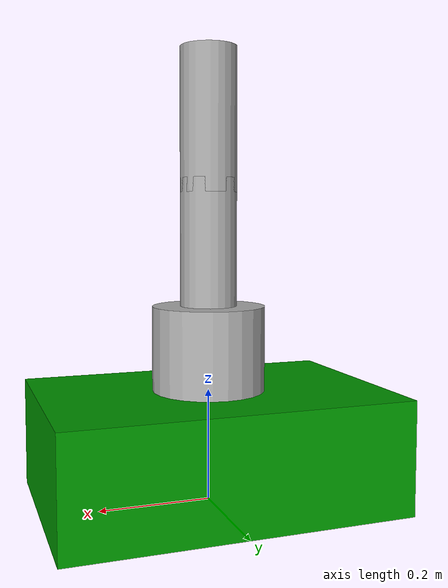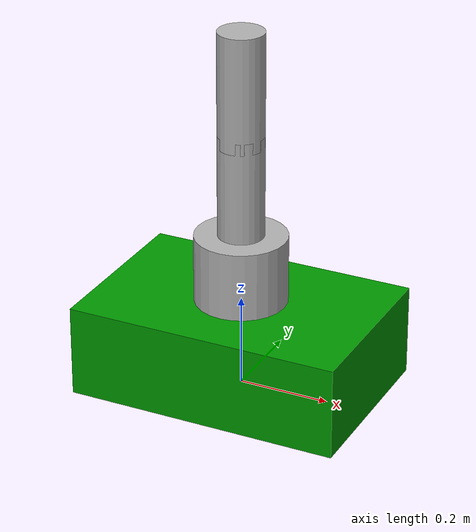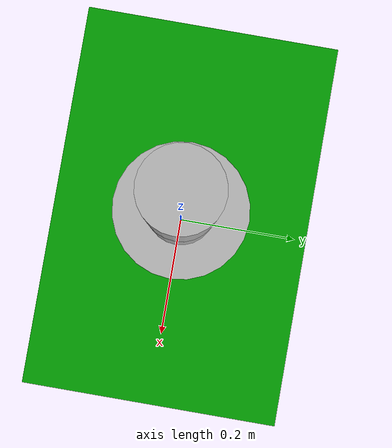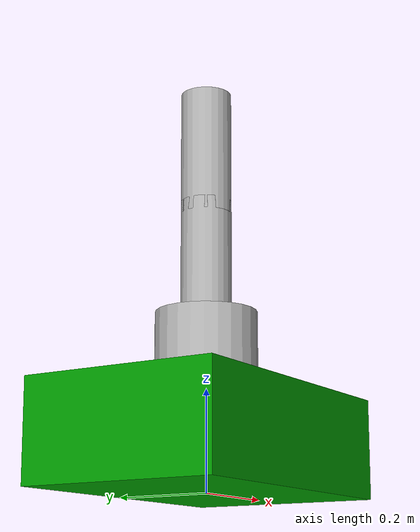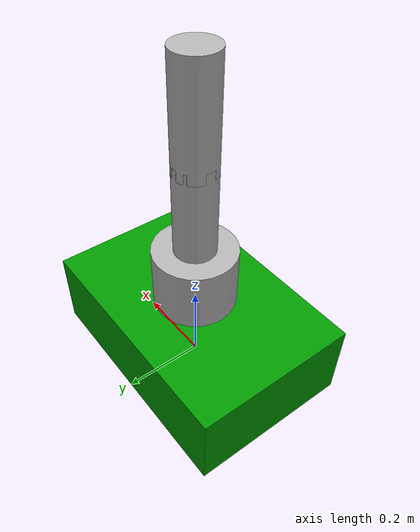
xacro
<?xml version="1.0"?>
<robot xmlns:xacro="http://www.ros.org/wiki/xacro" name="my_robot">
    <xacro:arg name="initial_positions_file" default="initial_positions.yaml" />

    <!-- Import my_robot urdf file -->
    <xacro:include filename="$(find prr_description)/urdf/prr.urdf" />

    <!-- Import control_xacro -->
    <xacro:include filename="my_robot.ros2_control.xacro" />

    <xacro:my_robot_ros2_control name="FakeSystem" initial_positions_file="$(arg initial_positions_file)"/>

</robot>

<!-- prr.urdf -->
<!-- |    This document was autogenerated by xacro from src/prr_description/urdf/prr.urdf.xacro | -->
<!-- |    EDITING THIS FILE BY HAND IS NOT RECOMMENDED                                 | -->
<robot name="my_robot">
  <material name="green">
    <color rgba="0 0.6 0 1"/>
  </material>
  <material name="gray">
    <color rgba="0.7 0.7 0.7 1"/>
  </material>
  <link name="world"/>
  <joint name="fixed_base" type="fixed">
    <parent link="world"/>
    <child link="base_link"/>
  </joint>
  <link name="base_link">
    <visual>
      <geometry>
        <box size="0.6 0.4 0.2"/>
      </geometry>
      <origin rpy="0 0 0" xyz="0 0 0.1"/>
      <material name="green"/>
    </visual>
    <collision>
      <geometry>
        <box size="0.6 0.4 0.2"/>
      </geometry>
      <origin rpy="0 0 0" xyz="0 0 0.1"/>
    </collision>
    <inertial>
      <mass value="5.0"/>
      <origin rpy="0 0 0" xyz="0 0 0.1"/>
      <inertia ixx="0.08333333333333336" ixy="0" ixz="0" iyy="0.16666666666666669" iyz="0" izz="0.21666666666666667"/>
    </inertial>
  </link>
  <link name="shoulder_link">
    <visual>
      <geometry>
        <cylinder length="0.3" radius="0.1"/>
      </geometry>
      <origin rpy="0 0 0" xyz="0 0 0"/>
      <material name="gray"/>
    </visual>
    <collision>
      <geometry>
        <cylinder length="0.3" radius="0.1"/>
      </geometry>
      <origin rpy="0 0 0" xyz="0 0 0"/>
    </collision>
    <inertial>
      <mass value="1.0"/>
      <origin rpy="1.5707963267948966 0 0" xyz="0 0 0"/>
      <inertia ixx="0.009999999999999998" ixy="0" ixz="0" iyy="0.009999999999999998" iyz="0" izz="0.005000000000000001"/>
    </inertial>
  </link>
  <joint name="base_shoulder_joint" type="prismatic">
    <parent link="base_link"/>
    <child link="shoulder_link"/>
    <origin rpy="0 0 0" xyz="0 0 0.2"/>
    <axis xyz="0 0 1"/>
    <limit effort="10" lower="-0.05" upper="0.14" velocity="10"/>
  </joint>
  <link name="arm_link">
    <visual>
      <geometry>
        <cylinder length="0.25" radius="0.05"/>
      </geometry>
      <origin rpy="0 0 0" xyz="0 0 0.1"/>
      <material name="gray"/>
    </visual>
    <collision>
      <geometry>
        <cylinder length="0.25" radius="0.05"/>
      </geometry>
      <origin rpy="0 0 0" xyz="0 0 0.1"/>
    </collision>
    <inertial>
      <mass value="1.0"/>
      <origin rpy="1.5707963267948966 0 0" xyz="0 0 0"/>
      <inertia ixx="0.005833333333333334" ixy="0" ixz="0" iyy="0.005833333333333334" iyz="0" izz="0.0012500000000000002"/>
    </inertial>
  </link>
  <joint name="arm_joint" type="revolute">
    <parent link="shoulder_link"/>
    <child link="arm_link"/>
    <origin rpy="0 0 0" xyz="0 0 0.15"/>
    <axis xyz="0 1 0"/>
    <limit effort="10" lower="-2.1" upper="2.1" velocity="10"/>
  </joint>
  <link name="link3">
    <visual>
      <geometry>
        <cylinder length="0.25" radius="0.05"/>
      </geometry>
      <origin rpy="0 0 0" xyz="0 0 0.125"/>
      <material name="gray"/>
    </visual>
    <collision>
      <geometry>
        <cylinder length="0.25" radius="0.05"/>
      </geometry>
      <origin rpy="0 0 0" xyz="0 0 0.125"/>
    </collision>
    <inertial>
      <mass value="1.0"/>
      <origin rpy="1.5707963267948966 0 0" xyz="0 0 0"/>
      <inertia ixx="0.005833333333333334" ixy="0" ixz="0" iyy="0.005833333333333334" iyz="0" izz="0.0012500000000000002"/>
    </inertial>
  </link>
  <joint name="joint3" type="revolute">
    <parent link="arm_link"/>
    <child link="link3"/>
    <origin rpy="0 0 0" xyz="0 0 0.2"/>
    <axis xyz="0 1 0"/>
    <limit effort="10" lower="-2.3" upper="2.3" velocity="10"/>
  </joint>
  <gazebo>
    <plugin filename="gz_ros2_control-system" name="gz_ros2_control::GazeboSimROS2ControlPlugin">
      <parameters>/home/csayar/prr_ws/install/prr_description/share/prr_description/config/my_controllers.yaml</parameters>
    </plugin>
  </gazebo>
  <ros2_control name="GazeboSystem" type="system">
    <hardware>
      <plugin>gz_ros2_control/GazeboSimSystem</plugin>
    </hardware>
    <joint name="base_shoulder_joint">
      <command_interface name="position">
        <param name="min">0</param>
        <param name="max">0.14</param>
      </command_interface>
      <state_interface name="position"/>
      <state_interface name="velocity"/>
    </joint>
    <joint name="arm_joint">
      <command_interface name="position">
        <param name="min">-2.1</param>
        <param name="max">2.1</param>
      </command_interface>
      <state_interface name="position"/>
      <state_interface name="velocity"/>
    </joint>
    <joint name="joint3">
      <command_interface name="position">
        <param name="min">-2.3</param>
        <param name="max">2.3</param>
      </command_interface>
      <state_interface name="position"/>
      <state_interface name="velocity"/>
    </joint>
  </ros2_control>
</robot>
